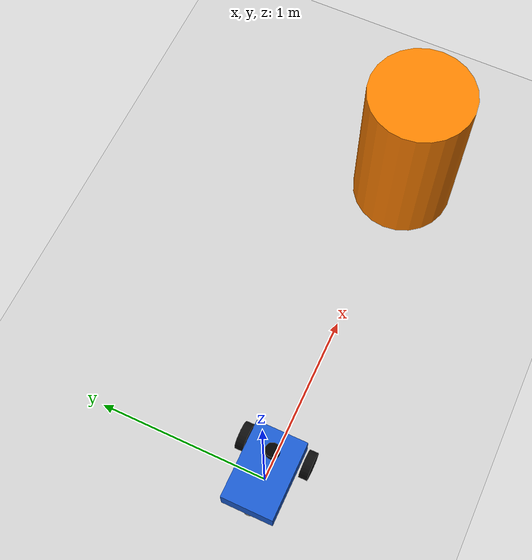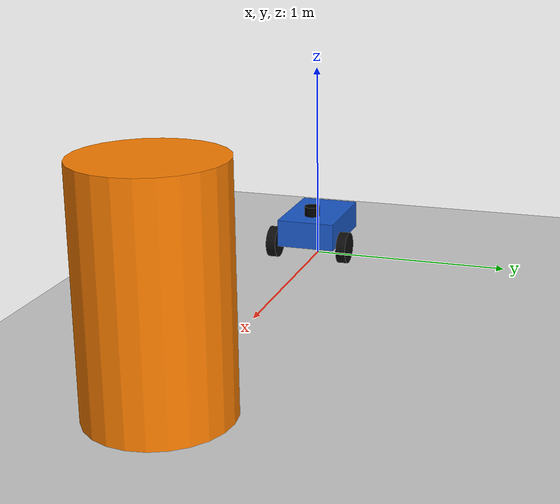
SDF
<?xml version="1.0" ?>
<sdf version="1.8">
    <world name="car_world">
        <physics name="1ms" type="ignored">
            <max_step_size>0.001</max_step_size>
            <real_time_factor>1.0</real_time_factor>
        </physics>
        <plugin
            filename="libignition-gazebo-physics-system.so"
            name="ignition::gazebo::systems::Physics">
        </plugin>
        <plugin
            filename="libignition-gazebo-user-commands-system.so"
            name="ignition::gazebo::systems::UserCommands">
        </plugin>
        <plugin
            filename="libignition-gazebo-scene-broadcaster-system.so"
            name="ignition::gazebo::systems::SceneBroadcaster">
        </plugin>
        <plugin
            filename="libignition-gazebo-sensors-system.so"
            name="ignition::gazebo::systems::Sensors">
            <render_engine>ogre</render_engine>
        </plugin>

        <light type="directional" name="sun">
            <cast_shadows>true</cast_shadows>
            <pose>0 0 10 0 0 0</pose>
            <diffuse>0.8 0.8 0.8 1</diffuse>
            <specular>0.2 0.2 0.2 1</specular>
            <attenuation>
                <range>1000</range>
                <constant>0.9</constant>
                <linear>0.01</linear>
                <quadratic>0.001</quadratic>
            </attenuation>
            <direction>-0.5 0.1 -0.9</direction>
        </light>

        <model name="ground_plane">
            <static>true</static>
            <link name="link">
                <collision name="collision">
                <geometry>
                    <plane>
                    <normal>0 0 1</normal>
                    </plane>
                </geometry>
                </collision>
                <visual name="visual">
                <geometry>
                    <plane>
                    <normal>0 0 1</normal>
                    <size>100 100</size>
                    </plane>
                </geometry>
                <material>
                    <ambient>0.8 0.8 0.8 1</ambient>
                    <diffuse>0.8 0.8 0.8 1</diffuse>
                    <specular>0.8 0.8 0.8 1</specular>
                </material>
                </visual>
            </link>
        </model>
        <!-- A small differential-drive mobile robot. Its command topic is /cmd_vel. -->
        <model name="vehicle_blue">
            <pose>0 0 0.01 0 0 0</pose>

            <link name="base_link">
                <pose>0 0 0.15 0 0 0</pose>
                <inertial>
                    <mass>4.0</mass>
                    <inertia>
                        <ixx>0.04</ixx><iyy>0.08</iyy><izz>0.10</izz>
                    </inertia>
                </inertial>
                <collision name="collision">
                    <geometry><box><size>0.45 0.30 0.14</size></box></geometry>
                </collision>
                <visual name="visual">
                    <geometry><box><size>0.45 0.30 0.14</size></box></geometry>
                    <material>
                        <ambient>0.10 0.35 0.80 1</ambient>
                        <diffuse>0.10 0.35 0.80 1</diffuse>
                    </material>
                </visual>
            </link>

            <link name="left_wheel">
                <pose>0.15 0.19 0.08 -1.5708 0 0</pose>
                <inertial>
                    <mass>0.3</mass>
                    <inertia><ixx>0.0008</ixx><iyy>0.0008</iyy><izz>0.0014</izz></inertia>
                </inertial>
                <collision name="collision">
                    <geometry><cylinder><radius>0.08</radius><length>0.05</length></cylinder></geometry>
                    <surface><friction><ode><mu>1.0</mu><mu2>1.0</mu2></ode></friction></surface>
                </collision>
                <visual name="visual">
                    <geometry><cylinder><radius>0.08</radius><length>0.05</length></cylinder></geometry>
                    <material><ambient>0.05 0.05 0.05 1</ambient><diffuse>0.05 0.05 0.05 1</diffuse></material>
                </visual>
            </link>

            <link name="right_wheel">
                <pose>0.15 -0.19 0.08 -1.5708 0 0</pose>
                <inertial>
                    <mass>0.3</mass>
                    <inertia><ixx>0.0008</ixx><iyy>0.0008</iyy><izz>0.0014</izz></inertia>
                </inertial>
                <collision name="collision">
                    <geometry><cylinder><radius>0.08</radius><length>0.05</length></cylinder></geometry>
                    <surface><friction><ode><mu>1.0</mu><mu2>1.0</mu2></ode></friction></surface>
                </collision>
                <visual name="visual">
                    <geometry><cylinder><radius>0.08</radius><length>0.05</length></cylinder></geometry>
                    <material><ambient>0.05 0.05 0.05 1</ambient><diffuse>0.05 0.05 0.05 1</diffuse></material>
                </visual>
            </link>

            <!-- A small rear skid keeps the chassis off the ground. -->
            <link name="rear_skid">
                <pose>-0.18 0 0.045 0 0 0</pose>
                <inertial><mass>0.1</mass><inertia><ixx>0.0001</ixx><iyy>0.0001</iyy><izz>0.0001</izz></inertia></inertial>
                <collision name="collision"><geometry><sphere><radius>0.045</radius></sphere></geometry></collision>
                <visual name="visual"><geometry><sphere><radius>0.045</radius></sphere></geometry></visual>
            </link>

            <joint name="left_wheel_joint" type="revolute">
                <parent>base_link</parent><child>left_wheel</child>
                <axis><xyz>0 0 1</xyz><limit><lower>-1e16</lower><upper>1e16</upper></limit></axis>
            </joint>
            <joint name="right_wheel_joint" type="revolute">
                <parent>base_link</parent><child>right_wheel</child>
                <axis><xyz>0 0 1</xyz><limit><lower>-1e16</lower><upper>1e16</upper></limit></axis>
            </joint>
            <joint name="rear_skid_joint" type="ball">
                <parent>base_link</parent><child>rear_skid</child>
            </joint>

            <!-- 2d lidar attached to base -->
            <link name="lidar_link">
                <pose>0.1 0 0.25 0 0 0</pose>
                <inertial>
                    <mass>0.1</mass>
                    <inertia><ixx>0.0001</ixx><iyy>0.0001</iyy><izz>0.0001</izz></inertia>
                </inertial>
                <visual name="visual">
                    <geometry><cylinder><radius>0.04</radius><length>0.05</length></cylinder></geometry>
                    <material><ambient>0.0 0.0 0.0 1</ambient><diffuse>0.0 0.0 0.0 1</diffuse></material>
                </visual>
                <collision name="collision">
                    <geometry><cylinder><radius>0.04</radius><length>0.05</length></cylinder></geometry>
                </collision>

                <sensor name='gpu_lidar' type='gpu_lidar'>
                    <pose>0 0 0 0 0 0</pose>
                    <topic>/scan</topic>
                    <update_rate>10</update_rate>
                    <lidar>
                        <scan>
                            <horizontal>
                                <samples>360</samples>
                                <resolution>1</resolution>
                                <min_angle>-3.14159</min_angle>
                                <max_angle>3.14159</max_angle>
                            </horizontal>
                            <vertical>
                                <samples>1</samples>
                                <resolution>1</resolution>
                                <min_angle>0</min_angle>
                                <max_angle>0</max_angle>
                            </vertical>
                        </scan>
                        <range>
                            <min>0.15</min>
                            <max>10.0</max>
                            <resolution>0.01</resolution>
                        </range>
                    </lidar>
                    <always_on>1</always_on>
                    <visualize>true</visualize>
                </sensor>
            </link>

            <joint name="lidar_joint" type="fixed">
                <parent>base_link</parent>
                <child>lidar_link</child>
            </joint>

            <plugin filename="libignition-gazebo-diff-drive-system.so"
                    name="ignition::gazebo::systems::DiffDrive">
                <left_joint>left_wheel_joint</left_joint>
                <right_joint>right_wheel_joint</right_joint>
                <wheel_separation>0.38</wheel_separation>
                <wheel_radius>0.08</wheel_radius>
                <topic>/cmd_vel</topic>
                <odom_publish_frequency>30</odom_publish_frequency>
            </plugin>
        </model>

        <!-- test obstacle -->
        <model name="cylinder_obstacle">
            <!-- static=true so the robot can't push it around -->
            <static>true</static>
            <!-- 2 meters ahead, slightly above ground so it doesn't sink -->
            <pose>2.0 0.0 0.5 0 0 0</pose>
            <link name="link">
                <visual name="visual">
                    <geometry>
                        <cylinder>
                            <radius>0.3</radius>
                            <length>1.0</length>
                        </cylinder>
                    </geometry>
                    <material>
                        <ambient>1.0 0.5 0.0 1</ambient> <!-- orange color -->
                        <diffuse>1.0 0.5 0.0 1</diffuse>
                    </material>
                </visual>
                <collision name="collision">
                    <geometry>
                        <cylinder>
                            <radius>0.3</radius>
                            <length>1.0</length>
                        </cylinder>
                    </geometry>
                </collision>
            </link>
        </model>
    </world>
</sdf>
